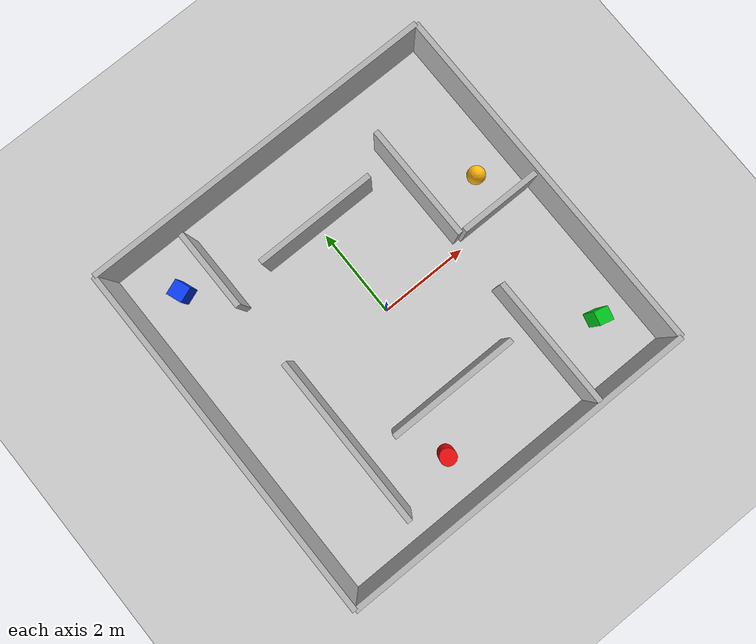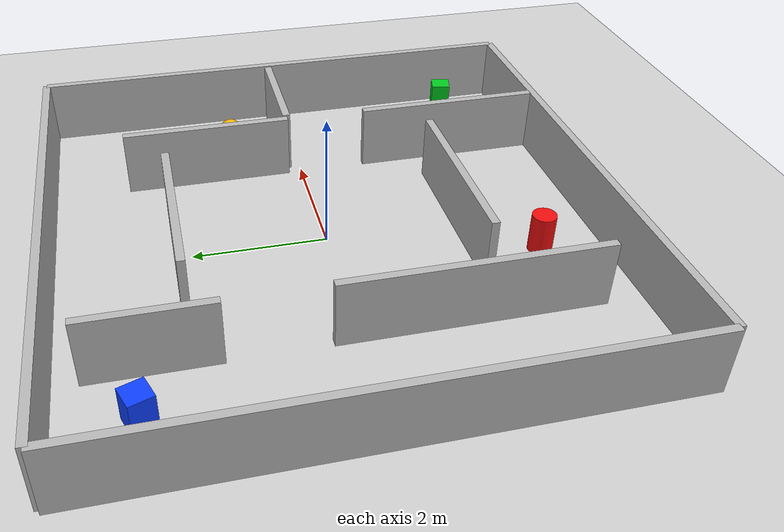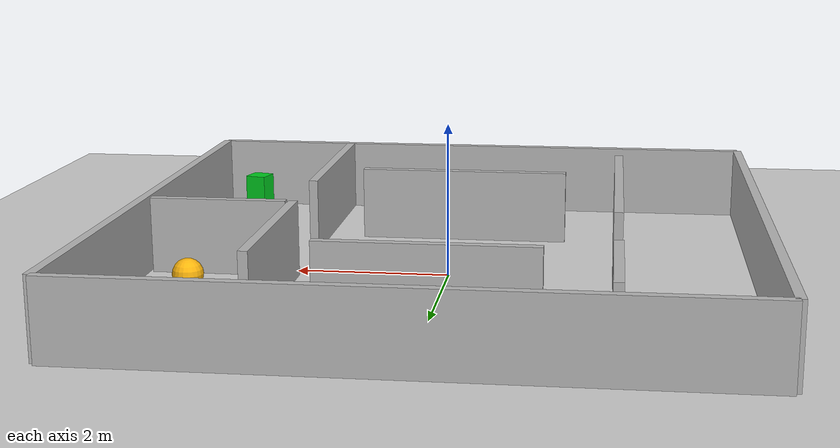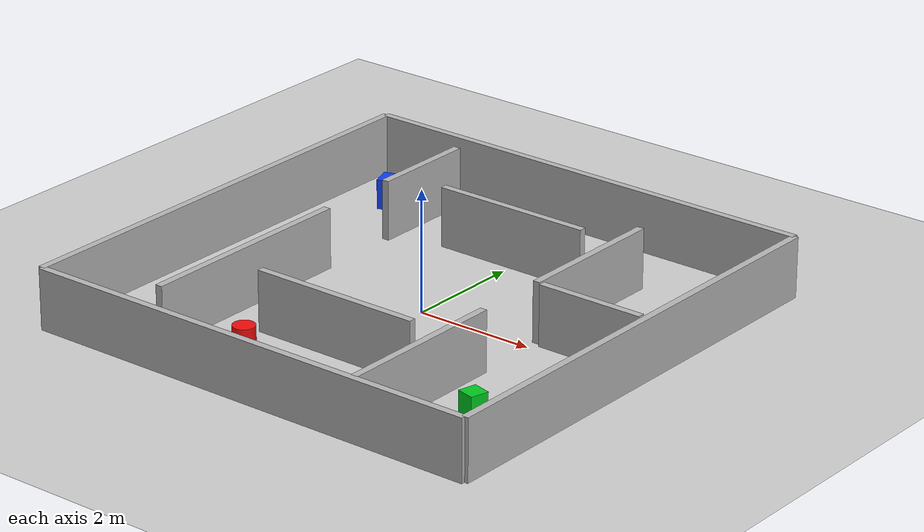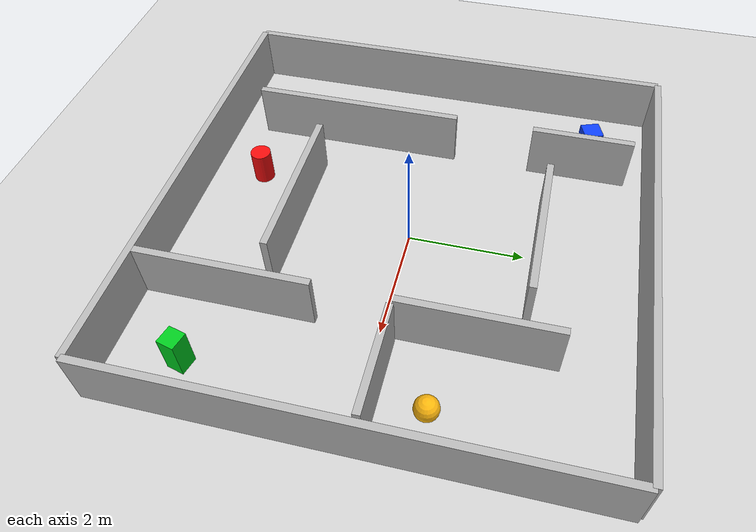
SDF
<sdf version="1.10">
  <world name="maze_corridor">
    <plugin filename="gz-sim-physics-system" name="gz::sim::systems::Physics"/>
    <plugin filename="gz-sim-user-commands-system" name="gz::sim::systems::UserCommands"/>
    <plugin filename="gz-sim-scene-broadcaster-system" name="gz::sim::systems::SceneBroadcaster"/>
    <plugin filename="gz-sim8-sensors-system" name="gz::sim::systems::Sensors">
      <render_engine>ogre2</render_engine>
    </plugin>
    <plugin filename="gz-sim8-imu-system" name="gz::sim::systems::Imu"/>

    <gravity>0 0 -9.81</gravity>

    <light name="sun" type="directional">
      <pose>0 0 10 0 0 0</pose>
      <diffuse>0.8 0.8 0.8 1</diffuse>
      <specular>0.2 0.2 0.2 1</specular>
      <direction>-0.5 0.1 -0.9</direction>
    </light>

    <model name="ground_plane">
      <static>true</static>
      <link name="link">
        <collision name="collision">
          <geometry><plane><normal>0 0 1</normal><size>14 14</size></plane></geometry>
        </collision>
        <visual name="visual">
          <geometry><plane><normal>0 0 1</normal><size>14 14</size></plane></geometry>
          <material>
            <ambient>0.82 0.82 0.82 1</ambient>
            <diffuse>0.82 0.82 0.82 1</diffuse>
          </material>
        </visual>
      </link>
    </model>

    <model name="maze_walls">
      <static>true</static>

      <link name="outer_north">
        <pose>0 4 0.5 0 0 0</pose>
        <collision name="collision"><geometry><box><size>8.0 0.12 1.0</size></box></geometry></collision>
        <visual name="visual"><geometry><box><size>8.0 0.12 1.0</size></box></geometry></visual>
      </link>
      <link name="outer_south">
        <pose>0 -4 0.5 0 0 0</pose>
        <collision name="collision"><geometry><box><size>8.0 0.12 1.0</size></box></geometry></collision>
        <visual name="visual"><geometry><box><size>8.0 0.12 1.0</size></box></geometry></visual>
      </link>
      <link name="outer_east">
        <pose>4 0 0.5 0 0 0</pose>
        <collision name="collision"><geometry><box><size>0.12 8.0 1.0</size></box></geometry></collision>
        <visual name="visual"><geometry><box><size>0.12 8.0 1.0</size></box></geometry></visual>
      </link>
      <link name="outer_west">
        <pose>-4 0 0.5 0 0 0</pose>
        <collision name="collision"><geometry><box><size>0.12 8.0 1.0</size></box></geometry></collision>
        <visual name="visual"><geometry><box><size>0.12 8.0 1.0</size></box></geometry></visual>
      </link>

      <link name="wall_left_lower">
        <pose>-2.2 -1.5 0.5 0 0 0</pose>
        <collision name="collision"><geometry><box><size>0.12 3.8 1.0</size></box></geometry></collision>
        <visual name="visual"><geometry><box><size>0.12 3.8 1.0</size></box></geometry></visual>
      </link>
      <link name="wall_left_upper">
        <pose>-2.2 2.7 0.5 0 0 0</pose>
        <collision name="collision"><geometry><box><size>0.12 1.8 1.0</size></box></geometry></collision>
        <visual name="visual"><geometry><box><size>0.12 1.8 1.0</size></box></geometry></visual>
      </link>
      <link name="wall_center_upper">
        <pose>0 2.2 0.5 0 0 0</pose>
        <collision name="collision"><geometry><box><size>2.7 0.12 1.0</size></box></geometry></collision>
        <visual name="visual"><geometry><box><size>2.7 0.12 1.0</size></box></geometry></visual>
      </link>
      <link name="wall_center_lower">
        <pose>0 -2.0 0.5 0 0 0</pose>
        <collision name="collision"><geometry><box><size>2.9 0.12 1.0</size></box></geometry></collision>
        <visual name="visual"><geometry><box><size>2.9 0.12 1.0</size></box></geometry></visual>
      </link>
      <link name="wall_right_lower">
        <pose>2.0 -2.5 0.5 0 0 0</pose>
        <collision name="collision"><geometry><box><size>0.12 2.9 1.0</size></box></geometry></collision>
        <visual name="visual"><geometry><box><size>0.12 2.9 1.0</size></box></geometry></visual>
      </link>
      <link name="wall_right_upper">
        <pose>2.0 1.5 0.5 0 0 0</pose>
        <collision name="collision"><geometry><box><size>0.12 2.6 1.0</size></box></geometry></collision>
        <visual name="visual"><geometry><box><size>0.12 2.6 1.0</size></box></geometry></visual>
      </link>
      <link name="short_dead_end">
        <pose>3.0 0.2 0.5 0 0 0</pose>
        <collision name="collision"><geometry><box><size>1.8 0.12 1.0</size></box></geometry></collision>
        <visual name="visual"><geometry><box><size>1.8 0.12 1.0</size></box></geometry></visual>
      </link>
    </model>

    <model name="goal_ball">
      <static>false</static>
      <pose>3.2 1 0.2 0 0 0</pose>
      <link name="link">
        <inertial>
          <mass>0.15</mass>
          <inertia>
            <ixx>0.0016</ixx>
            <iyy>0.0016</iyy>
            <izz>0.0016</izz>
            <ixy>0</ixy>
            <ixz>0</ixz>
            <iyz>0</iyz>
          </inertia>
        </inertial>
        <collision name="collision">
          <geometry><sphere><radius>0.2</radius></sphere></geometry>
        </collision>
        <visual name="visual">
          <geometry><sphere><radius>0.2</radius></sphere></geometry>
          <material><ambient>1.0 0.72 0.05 1</ambient><diffuse>1.0 0.72 0.05 1</diffuse></material>
        </visual>
      </link>
    </model>

    <model name="colored_distractors">
      <static>true</static>
      <link name="blue_box">
        <pose>-3.0 2.9 0.25 0 0 0.35</pose>
        <collision name="collision">
          <geometry><box><size>0.35 0.35 0.5</size></box></geometry>
        </collision>
        <visual name="visual">
          <geometry><box><size>0.35 0.35 0.5</size></box></geometry>
          <material><ambient>0.05 0.25 1.0 1</ambient><diffuse>0.05 0.25 1.0 1</diffuse></material>
        </visual>
      </link>

      <link name="red_cylinder">
        <pose>-0.9 -3.0 0.3 0 0 0</pose>
        <collision name="collision">
          <geometry><cylinder><radius>0.18</radius><length>0.6</length></cylinder></geometry>
        </collision>
        <visual name="visual">
          <geometry><cylinder><radius>0.18</radius><length>0.6</length></cylinder></geometry>
          <material><ambient>0.95 0.05 0.05 1</ambient><diffuse>0.95 0.05 0.05 1</diffuse></material>
        </visual>
      </link>

      <link name="green_tall_box">
        <pose>3.2 -2.8 0.35 0 0 -0.25</pose>
        <collision name="collision">
          <geometry><box><size>0.3 0.3 0.7</size></box></geometry>
        </collision>
        <visual name="visual">
          <geometry><box><size>0.3 0.3 0.7</size></box></geometry>
          <material><ambient>0.0 0.8 0.12 1</ambient><diffuse>0.0 0.8 0.12 1</diffuse></material>
        </visual>
      </link>
    </model>
  </world>
</sdf>
